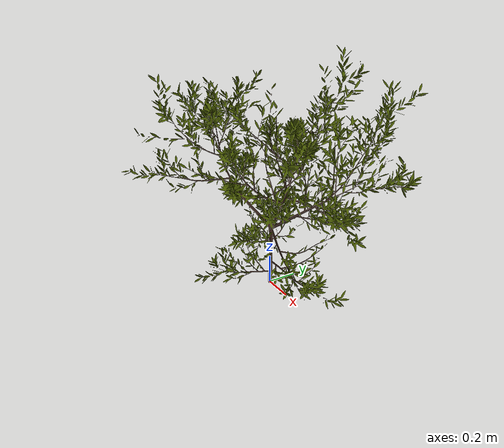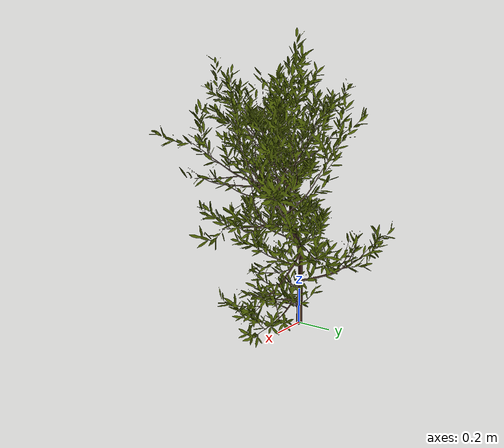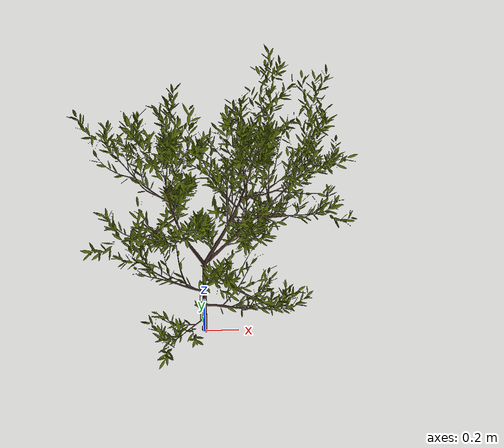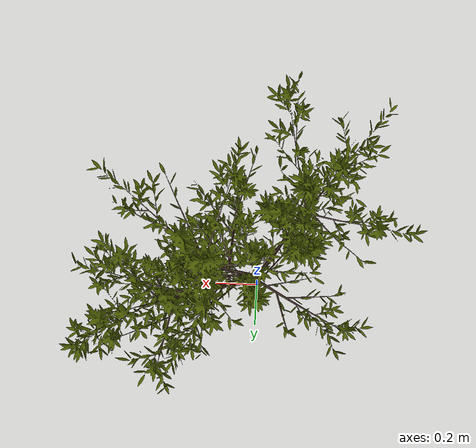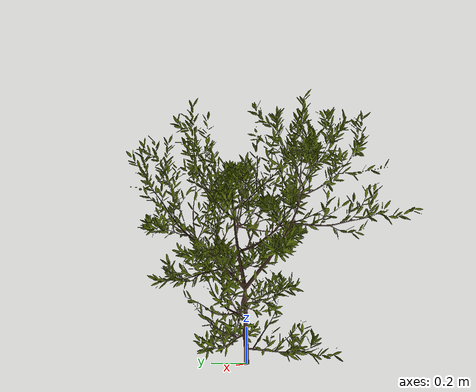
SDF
<?xml version="1.0"?>
<sdf version="1.3">
  <model name="Bush">
    <static>true</static>
    <link name="link">
      <collision name="collision">
      </collision>
      <visual name="visual">
        <geometry>
          <mesh>
            <uri>model://Bush/meshes/Bush.dae</uri>
            <scale>0.5 0.5 0.5</scale>
          </mesh>
        </geometry>
      </visual>
    </link>
  </model>
</sdf>
